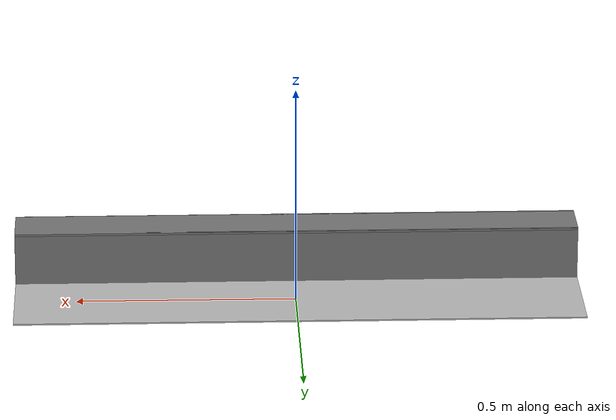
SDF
<?xml version="1.0" ?>
<sdf version="1.5">
  <model name="mymodelpik">
    <static>true</static>
    <link name="link">

      <inertial>
        <mass>10</mass>
        <pose>0 0 0.08974 0 0 0</pose>
        <inertia>
          <ixx>0.327090833</ixx>
          <ixy>0</ixy>
          <ixz>0</ixz>
          <iyy>1.374166667</iyy>
          <iyz>0</iyz>
          <izz>1.641090833</izz>
        </inertia>
      </inertial>

      <visual name="platform">
        <pose>0 0 0.06432 0 0 0</pose>
        <geometry>
          <box>
            <size>1.27 0.5969 0.003175</size>
          </box>
        </geometry>
      </visual>

      <collision name="platform">
        <pose>0 0 0.06432 0 0 0</pose>
        <geometry>
          <box>
            <size>1.27 0.5969 0.003175</size>
          </box>
        </geometry>
      </collision>

      <visual name="up1">
        <pose>0 0.05166 0.12537 0 0 0</pose>
        <geometry>
          <box>
            <size>1.27 0.00462 0.11892</size>
          </box>
        </geometry>
        <material>
          <ambient>0.46 0.46 0.46 1.0</ambient>
          <diffuse>0.46 0.46 0.46 1.0</diffuse>
        </material>
      </visual>

      <collision name="up1">
        <pose>0 0.05166 0.12537 0 0 0</pose>
        <geometry>
          <box>
            <size>1.27 0.00462 0.11892</size>
          </box>
        </geometry>
      </collision>

      <visual name="up2">
        <pose>0 -0.05801 0.12537 0 0 0</pose>
        <geometry>
          <box>
            <size>1.27 0.00462 0.11892</size>
          </box>
        </geometry>
        <material>
          <ambient>0.46 0.46 0.46 1.0</ambient>
          <diffuse>0.46 0.46 0.46 1.0</diffuse>
        </material>
      </visual>

      <collision name="up2">
        <pose>0 -0.05801 0.12537 0 0 0</pose>
        <geometry>
          <box>
            <size>1.27 0.00462 0.11892</size>
          </box>
        </geometry>
      </collision>

      <visual name="top">
        <pose>0 -0.00249 0.18252 0 0 0</pose>
        <geometry>
          <box>
            <size>1.27 0.1143 0.00462</size>
          </box>
        </geometry>
        <material>
          <ambient>0.46 0.46 0.46 1.0</ambient>
          <diffuse>0.46 0.46 0.46 1.0</diffuse>
        </material>
      </visual>
      <collision name="top">
        <pose>0 -0.00249 0.18252 0 0 0</pose>
        <geometry>
          <box>
            <size>1.27 0.1143 0.00462</size>
          </box>
        </geometry>
      </collision>
    </link>
  </model>
</sdf>
